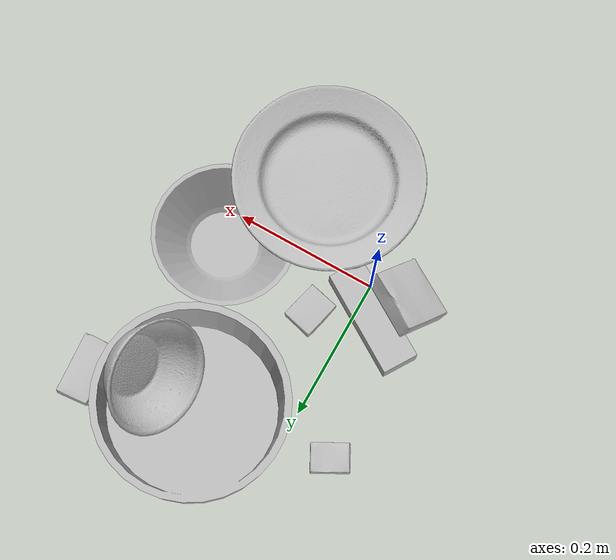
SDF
<sdf version="1.4">
  <world name="default">
    <light name="light1" type="point">
      <pose>0 0 1 0 0 0</pose>
      <diffuse>3 3 3 1</diffuse>
      <specular>3 3 3 1</specular>
    </light>
    <light name="light2" type="point">
      <pose>0 0.5 2 0 0 0</pose>
      <diffuse>1 1 1 1</diffuse>
      <specular>1 1 1 1</specular>
    </light>
    <light name="light3" type="point">
      <pose>0 0.5 2 0 0 0</pose>
      <diffuse>3 3 3 1</diffuse>
      <specular>3 3 3 1</specular>
    </light>
    <scene>
      <ambient>0.7 0.7 0.7</ambient>
    </scene>
    <model name="box1">
      <link name="link_box1">
        <collision name="default">
          <geometry>
            <mesh>
              <uri>model://jenga/collision_meshes/collision.obj</uri>
              <scale>1.0 1.0 1.0</scale>
            </mesh>
          </geometry>
          <surface>
            <friction>
              <ode>
                <mu>0.5</mu>
                <mu2>0.5</mu2>
              </ode>
            </friction>
          <contact>
        <ode>
            <max_vel>0</max_vel>
            <min_depth>0.0001</min_depth>
            <kp>1e8</kp>
        </ode>
    </contact></surface>
        </collision>
        <visual name="default">
          <geometry>
            <mesh>
              <uri>model://jenga/visual_meshes/visual.dae</uri>
              <scale>1.0 1.0 1.0</scale>
            </mesh>
          </geometry>
        </visual>
        <inertial>
          <mass>0.2830650806427002</mass>
          <pose>-2.502855807051674e-07 -0.00010250010382151231 -4.0923401684267446e-05 0.0 -7.34215461761844e-07 0.0</pose>
          <inertia>
            <ixx>7.833097e-05</ixx>
            <iyy>0.0005307686</iyy>
            <izz>0.0005666406</izz>
            <ixy>0</ixy>
            <ixz>0</ixz>
            <iyz>0</iyz>
          </inertia>
        </inertial>
      </link>
      <pose>-0.024200493469834328 0.0397484228014946 0.014999994076788425 7.850389533839357e-08 3.1401686903946434e-09 -0.5564130098360318</pose>
    </model>
    <model name="box11">
      <link name="link_box11">
        <collision name="default">
          <geometry>
            <mesh>
              <uri>model://cracker_box/collision_meshes/collision.obj</uri>
              <scale>0.25 0.25 0.25</scale>
            </mesh>
          </geometry>
          <surface>
            <friction>
              <ode>
                <mu>0.5</mu>
                <mu2>0.5</mu2>
              </ode>
            </friction>
          <contact>
        <ode>
            <max_vel>0</max_vel>
            <min_depth>0.0001</min_depth>
            <kp>1e8</kp>
        </ode>
    </contact></surface>
        </collision>
        <visual name="default">
          <geometry>
            <mesh>
              <uri>model://cracker_box/visual_meshes/visual.dae</uri>
              <scale>0.25 0.25 0.25</scale>
            </mesh>
          </geometry>
        </visual>
        <inertial>
          <mass>0.04137800261378288</mass>
          <pose>0.00023660347505938262 6.358561950037256e-05 -0.0004257383698131889 -0.00031620748486547713 -0.011106488669102847 0.002546795699546287</pose>
          <inertia>
            <ixx>6.577948e-06</ixx>
            <iyy>1.0861484e-05</iyy>
            <izz>1.5500336e-05</izz>
            <ixy>0</ixy>
            <ixz>0</ixz>
            <iyz>0</iyz>
          </inertia>
        </inertial>
      </link>
      <pose>-0.0667060986161232 0.23267292976379395 0.009120449423789978 -0.011788024823620106 -0.007367218509232532 -2.6457958824303316</pose>
    </model>
    <model name="box2">
      <link name="link_box2">
        <collision name="default">
          <geometry>
            <mesh>
              <uri>model://gelatin_box/collision_meshes/collision.obj</uri>
              <scale>1.0 1.0 1.0</scale>
            </mesh>
          </geometry>
          <surface>
            <friction>
              <ode>
                <mu>0.5</mu>
                <mu2>0.5</mu2>
              </ode>
            </friction>
          <contact>
        <ode>
            <max_vel>0</max_vel>
            <min_depth>0.0001</min_depth>
            <kp>1e8</kp>
        </ode>
    </contact></surface>
        </collision>
        <visual name="default">
          <geometry>
            <mesh>
              <uri>model://gelatin_box/visual_meshes/visual.dae</uri>
              <scale>1.0 1.0 1.0</scale>
            </mesh>
          </geometry>
        </visual>
        <inertial>
          <mass>0.22900472581386566</mass>
          <pose>0.000431961816502735 0.00011156871914863586 -0.0003640321083366871 -0.001050372089182411 -0.004755818223717792 0.016440559471606643</pose>
          <inertia>
            <ixx>0.00016165864</ixx>
            <iyy>0.00011547193</iyy>
            <izz>0.00024608054</izz>
            <ixy>0</ixy>
            <ixz>0</ixz>
            <iyz>0</iyz>
          </inertia>
        </inertial>
      </link>
      <pose>-0.052466750144958496 -0.004979580175131559 0.030625537037849426 -0.00926102039855202 -0.5397176311132411 1.0247765528952237</pose>
    </model>
    <model name="box21">
      <link name="link_box21">
        <collision name="default">
          <geometry>
            <mesh>
              <uri>model://sugar_box/collision_meshes/collision.obj</uri>
              <scale>0.5 0.5 0.5</scale>
            </mesh>
          </geometry>
          <surface>
            <friction>
              <ode>
                <mu>0.5</mu>
                <mu2>0.5</mu2>
              </ode>
            </friction>
          <contact>
        <ode>
            <max_vel>0</max_vel>
            <min_depth>0.0001</min_depth>
            <kp>1e8</kp>
        </ode>
    </contact></surface>
        </collision>
        <visual name="default">
          <geometry>
            <mesh>
              <uri>model://sugar_box/visual_meshes/visual.dae</uri>
              <scale>0.5 0.5 0.5</scale>
            </mesh>
          </geometry>
        </visual>
        <inertial>
          <mass>0.12271630764007568</mass>
          <pose>0.0005171863595023751 1.924554817378521e-05 -0.00018182404164690524 -0.00040462595111886014 0.0010506636380741379 0.0026153785562511135</pose>
          <inertia>
            <ixx>2.5561721e-05</ixx>
            <iyy>8.262075e-05</iyy>
            <izz>9.890688e-05</izz>
            <ixy>0</ixy>
            <ixz>0</ixz>
            <iyz>0</iyz>
          </inertia>
        </inertial>
      </link>
      <pose>0.27409428358078003 0.2890152931213379 0.011399309150874615 0.0007751594121383821 -0.02343257211892152 1.635467050888186</pose>
    </model>
    <model name="box3">
      <link name="link_box3">
        <collision name="default">
          <geometry>
            <mesh>
              <uri>model://rubiks_cube/collision_meshes/collision.obj</uri>
              <scale>1.0 1.0 1.0</scale>
            </mesh>
          </geometry>
          <surface>
            <friction>
              <ode>
                <mu>0.5</mu>
                <mu2>0.5</mu2>
              </ode>
            </friction>
          <contact>
        <ode>
            <max_vel>0</max_vel>
            <min_depth>0.0001</min_depth>
            <kp>1e8</kp>
        </ode>
    </contact></surface>
        </collision>
        <visual name="default">
          <geometry>
            <mesh>
              <uri>model://rubiks_cube/visual_meshes/visual.dae</uri>
              <scale>1.0 1.0 1.0</scale>
            </mesh>
          </geometry>
        </visual>
        <inertial>
          <mass>0.16665811836719513</mass>
          <pose>2.6721039830590598e-05 5.256966323941015e-05 -7.264316082000732e-06 -0.05467166844566422 -0.0981397083583286 -0.034457090447706985</pose>
          <inertia>
            <ixx>9.20898e-05</ixx>
            <iyy>9.166034e-05</iyy>
            <izz>9.285292e-05</izz>
            <ixy>0</ixy>
            <ixz>0</ixz>
            <iyz>0</iyz>
          </inertia>
        </inertial>
      </link>
      <pose>0.0772639587521553 -0.1004289761185646 0.028679288923740387 -2.677952829387173e-06 -7.951346093567963e-06 0.6173071523333604</pose>
    </model>
    <model name="box31">
      <link name="link_box31">
        <collision name="default">
          <geometry>
            <mesh>
              <uri>model://pudding_box/collision_meshes/collision.obj</uri>
              <scale>0.5 0.5 0.5</scale>
            </mesh>
          </geometry>
          <surface>
            <friction>
              <ode>
                <mu>0.5</mu>
                <mu2>0.5</mu2>
              </ode>
            </friction>
          <contact>
        <ode>
            <max_vel>0</max_vel>
            <min_depth>0.0001</min_depth>
            <kp>1e8</kp>
        </ode>
    </contact></surface>
        </collision>
        <visual name="default">
          <geometry>
            <mesh>
              <uri>model://pudding_box/visual_meshes/visual.dae</uri>
              <scale>0.5 0.5 0.5</scale>
            </mesh>
          </geometry>
        </visual>
        <inertial>
          <mass>0.023591291159391403</mass>
          <pose>0.00024474109522998333 0.00040339428232982755 -0.0002594413817860186 0.00521310040348307 -0.006603797312523218 0.020079827030686108</pose>
          <inertia>
            <ixx>6.667184e-06</ixx>
            <iyy>4.4857293e-06</iyy>
            <izz>9.845841e-06</izz>
            <ixy>0</ixy>
            <ixz>0</ixz>
            <iyz>0</iyz>
          </inertia>
        </inertial>
      </link>
      <pose>0.05325387790799141 0.0713881254196167 0.009862901642918587 0.022348462160207132 -0.011391753782181584 2.8925868041908616</pose>
    </model>
    <model name="plate1">
      <link name="link_plate1">
        <collision name="default">
          <geometry>
            <mesh>
              <uri>model://plate/collision_meshes/collision.obj</uri>
              <scale>1.0 1.0 1.0</scale>
            </mesh>
          </geometry>
          <surface>
            <friction>
              <ode>
                <mu>0.5</mu>
                <mu2>0.5</mu2>
              </ode>
            </friction>
          <contact>
        <ode>
            <max_vel>0</max_vel>
            <min_depth>0.0001</min_depth>
            <kp>1e8</kp>
        </ode>
    </contact></surface>
        </collision>
        <visual name="default">
          <geometry>
            <mesh>
              <uri>model://plate/visual_meshes/visual.dae</uri>
              <scale>1.0 1.0 1.0</scale>
            </mesh>
          </geometry>
        </visual>
        <inertial>
          <mass>0.2114637792110443</mass>
          <pose>-0.0006044656038284302 0.0002782588708214462 -0.0010561993112787604 0.002218744002621918 -0.003225513006599694 0.45262307488796183</pose>
          <inertia>
            <ixx>0.0009892316</ixx>
            <iyy>0.0009797702</iyy>
            <izz>0.0019347895</izz>
            <ixy>0</ixy>
            <ixz>0</ixz>
            <iyz>0</iyz>
          </inertia>
        </inertial>
      </link>
      <pose>0.11401842534542084 -0.0844033733010292 0.07238098978996277 -0.028482013699727395 -0.014144663952228525 2.4472047090138327</pose>
    </model>
    <model name="bowl1">
      <link name="link_bowl1">
        <collision name="default">
          <geometry>
            <mesh>
              <uri>model://bowl_a/collision_meshes/collision.obj</uri>
              <scale>1.0 1.0 1.0</scale>
            </mesh>
          </geometry>
          <surface>
            <friction>
              <ode>
                <mu>0.5</mu>
                <mu2>0.5</mu2>
              </ode>
            </friction>
          <contact>
        <ode>
            <max_vel>0</max_vel>
            <min_depth>0.0001</min_depth>
            <kp>1e8</kp>
        </ode>
    </contact></surface>
        </collision>
        <visual name="default">
          <geometry>
            <mesh>
              <uri>model://bowl_a/visual_meshes/visual.dae</uri>
              <scale>1.0 1.0 1.0</scale>
            </mesh>
          </geometry>
        </visual>
        <inertial>
          <mass>0.48499906063079834</mass>
          <pose>0.00027867438620887697 4.731262743007392e-05 -0.0013765298062935472 -0.0009805334386135593 -0.0010938262367740986 -0.19123808511586568</pose>
          <inertia>
            <ixx>0.0013808149</ixx>
            <iyy>0.0013892918</iyy>
            <izz>0.0024558324</izz>
            <ixy>0</ixy>
            <ixz>0</ixz>
            <iyz>0</iyz>
          </inertia>
        </inertial>
      </link>
      <pose>0.19972196221351624 0.04710137099027634 0.030383097007870674 -1.4068014974740999e-06 9.265380372568647e-07 -0.042772214148357884</pose>
    </model>
    <model name="plate2">
      <link name="link_plate2">
        <collision name="default">
          <geometry>
            <mesh>
              <uri>model://pan_tefal/collision_meshes/collision.obj</uri>
              <scale>1.0 1.0 1.0</scale>
            </mesh>
          </geometry>
          <surface>
            <friction>
              <ode>
                <mu>0.5</mu>
                <mu2>0.5</mu2>
              </ode>
            </friction>
          <contact>
        <ode>
            <max_vel>0</max_vel>
            <min_depth>0.0001</min_depth>
            <kp>1e8</kp>
        </ode>
    </contact></surface>
        </collision>
        <visual name="default">
          <geometry>
            <mesh>
              <uri>model://pan_tefal/visual_meshes/visual.dae</uri>
              <scale>1.0 1.0 1.0</scale>
            </mesh>
          </geometry>
        </visual>
        <inertial>
          <mass>1.510846495628357</mass>
          <pose>-0.00018002149590756744 3.279069278505631e-05 -0.008514934219419956 0.0008190286460061649 -0.00033014112223844094 -0.3318560039733936</pose>
          <inertia>
            <ixx>0.010429303</ixx>
            <iyy>0.010496541</iyy>
            <izz>0.01919834</izz>
            <ixy>0</ixy>
            <ixz>0</ixz>
            <iyz>0</iyz>
          </inertia>
        </inertial>
      </link>
      <pose>0.12429111450910568 0.2666022777557373 0.03805001080036163 1.3479663973773967e-08 -3.224558539554486e-08 2.8465103683741337</pose>
    </model>
    <model name="bowl2">
      <link name="link_bowl2">
        <collision name="default">
          <geometry>
            <mesh>
              <uri>model://bowl/collision_meshes/collision.obj</uri>
              <scale>1.0 1.0 1.0</scale>
            </mesh>
          </geometry>
          <surface>
            <friction>
              <ode>
                <mu>0.5</mu>
                <mu2>0.5</mu2>
              </ode>
            </friction>
          <contact>
        <ode>
            <max_vel>0</max_vel>
            <min_depth>0.0001</min_depth>
            <kp>1e8</kp>
        </ode>
    </contact></surface>
        </collision>
        <visual name="default">
          <geometry>
            <mesh>
              <uri>model://bowl/visual_meshes/visual.dae</uri>
              <scale>1.0 1.0 1.0</scale>
            </mesh>
          </geometry>
        </visual>
        <inertial>
          <mass>0.12714597582817078</mass>
          <pose>0.0002044505235971883 -0.0010302012087777257 -0.0008042659610509872 -0.015764101160635133 0.01454679544325816 0.7140405339594252</pose>
          <inertia>
            <ixx>0.0002920644</ixx>
            <iyy>0.00028553858</iyy>
            <izz>0.0004913528</izz>
            <ixy>0</ixy>
            <ixz>0</ixz>
            <iyz>0</iyz>
          </inertia>
        </inertial>
      </link>
      <pose>0.19705963134765625 0.2604442834854126 0.06253322213888168 -0.3164032853672882 0.8592253076372779 2.666442361223266</pose>
    </model>
  <physics type="ode">
      <max_contacts>50</max_contacts>
      <ode>
        <solver>
          <type>quick</type>
          <iters>75</iters>
        </solver>
        <constraints>
          <contact_max_correcting_vel>0</contact_max_correcting_vel>
          <contact_surface_layer>0</contact_surface_layer>
        </constraints>
      </ode>
    </physics></world>
</sdf>
